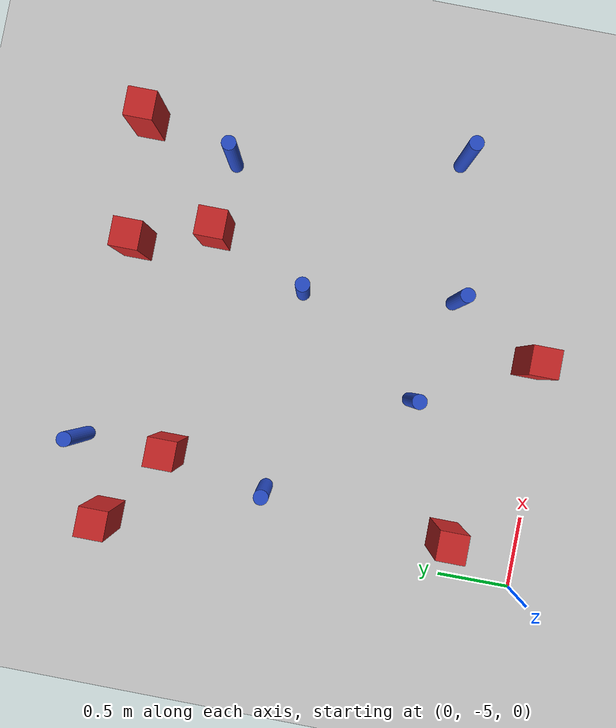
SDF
<sdf version="1.6">
 <world name="default">
  <model name="ground_plane">
   <static>1</static>
   <link name="link">
    <collision name="collision">
     <geometry><plane><normal>0 0 1</normal><size>100 100</size></plane></geometry>
     <surface><friction><ode><mu>100</mu><mu2>50</mu2></ode></friction></surface>
    </collision>
    <visual name="visual">
     <cast_shadows>0</cast_shadows>
     <geometry><plane><normal>0 0 1</normal><size>100 100</size></plane></geometry>
     <material>
      <ambient>1.0 1.0 1.0 1.0</ambient>
      <diffuse>0.8 0.8 0.8 1.0</diffuse>
      <specular>0.01 0.01 0.01 1.000000</specular>
     </material>
    </visual>
   </link>
  </model>
  <model name="pole_obstacle15">
   <static>true</static>
   <pose>2.59792775279 -2.53692966714 -3.09024884793e-07 -7.19054271912e-07 -2.11315075144e-07 -1.93935509271e-07</pose>
   <link name="link">
    <pose>0 0 0.3 0 -0 0</pose>
    <inertial>
     <mass>1</mass>
     <inertia><ixx>0.145833</ixx><ixy>0</ixy><ixz>0</ixz><iyy>0.145833</iyy><iyz>0</iyz><izz>0.125</izz></inertia>
    </inertial>
    <collision name="collision">
     <geometry><cylinder><radius>0.05</radius><length>.6</length></cylinder></geometry>
    </collision>
    <visual name="visual">
     <geometry><cylinder><radius>0.05</radius><length>.6</length></cylinder></geometry>
     <material>
      <script><name>Gazebo/Blue</name><uri>file://media/materials/scripts/gazebo.material</uri></script>
     </material>
    </visual>
   </link>
  </model>
  <model name="pole_obstacle20">
   <static>true</static>
   <pose>1.17382200154 -4.06774847225 -3.09024884793e-07 -7.19054271912e-07 -2.11315075134e-07 -1.93935509265e-07</pose>
   <link name="link">
    <pose>0 0 0.3 0 -0 0</pose>
    <inertial>
     <mass>1</mass>
     <inertia><ixx>0.145833</ixx><ixy>0</ixy><ixz>0</ixz><iyy>0.145833</iyy><iyz>0</iyz><izz>0.125</izz></inertia>
    </inertial>
    <collision name="collision">
     <geometry><cylinder><radius>0.05</radius><length>.6</length></cylinder></geometry>
    </collision>
    <visual name="visual">
     <geometry><cylinder><radius>0.05</radius><length>.6</length></cylinder></geometry>
     <material>
      <script><name>Gazebo/Blue</name><uri>file://media/materials/scripts/gazebo.material</uri></script>
     </material>
    </visual>
   </link>
  </model>
  <model name="pole_obstacle38">
   <static>true</static>
   <pose>2.89941433619 -4.12505029738 -3.09024884793e-07 -7.19054271912e-07 -2.11315075134e-07 -1.93935509266e-07</pose>
   <link name="link">
    <pose>0 0 0.3 0 -0 0</pose>
    <inertial>
     <mass>1</mass>
     <inertia><ixx>0.145833</ixx><ixy>0</ixy><ixz>0</ixz><iyy>0.145833</iyy><iyz>0</iyz><izz>0.125</izz></inertia>
    </inertial>
    <collision name="collision">
     <geometry><cylinder><radius>0.05</radius><length>.6</length></cylinder></geometry>
    </collision>
    <visual name="visual">
     <geometry><cylinder><radius>0.05</radius><length>.6</length></cylinder></geometry>
     <material>
      <script><name>Gazebo/Blue</name><uri>file://media/materials/scripts/gazebo.material</uri></script>
     </material>
    </visual>
   </link>
  </model>
  <model name="pole_obstacle68">
   <static>true</static>
   <pose>0.381886724583 -3.1783384255 -3.09024884793e-07 -7.19054271912e-07 -2.11315075129e-07 -1.93935509263e-07</pose>
   <link name="link">
    <pose>0 0 0.3 0 -0 0</pose>
    <inertial>
     <mass>1</mass>
     <inertia><ixx>0.145833</ixx><ixy>0</ixy><ixz>0</ixz><iyy>0.145833</iyy><iyz>0</iyz><izz>0.125</izz></inertia>
    </inertial>
    <collision name="collision">
     <geometry><cylinder><radius>0.05</radius><length>.6</length></cylinder></geometry>
    </collision>
    <visual name="visual">
     <geometry><cylinder><radius>0.05</radius><length>.6</length></cylinder></geometry>
     <material>
      <script><name>Gazebo/Blue</name><uri>file://media/materials/scripts/gazebo.material</uri></script>
     </material>
    </visual>
   </link>
  </model>
  <model name="square_post_obstacle63">
   <static>true</static>
   <pose>2.08169823434 -2.50607635694 -4.36207812815e-07 3.75137919937e-06 9.77721102514e-07 2.47381364184e-05</pose>
   <link name="link">
    <pose>0 0 0.25 0 -0 0</pose>
    <inertial>
     <mass>100</mass>
     <inertia>
      <ixx>0.166667</ixx>
      <ixy>0</ixy>
      <ixz>0</ixz>
      <iyy>0.166667</iyy>
      <iyz>0</iyz>
      <izz>0.166667</izz>
     </inertia>
    </inertial>
    <collision name="collision"><geometry><box><size>.2 .2 .5</size></box></geometry></collision>
    <visual name="visual">
     <geometry><box><size>.2 .2 .5</size></box></geometry>
     <material>
      <script><name>Gazebo/Red</name><uri>file://media/materials/scripts/gazebo.material</uri></script>
     </material>
    </visual>
   </link>
  </model>
  <model name="square_post_obstacle64">
   <static>true</static>
   <pose>1.58521656977 -4.85045739335 -4.36207812815e-07 3.75137919937e-06 9.77721102514e-07 2.47381364184e-05</pose>
   <link name="link">
    <pose>0 0 0.25 0 -0 0</pose>
    <inertial>
     <mass>100</mass>
     <inertia>
      <ixx>0.166667</ixx>
      <ixy>0</ixy>
      <ixz>0</ixz>
      <iyy>0.166667</iyy>
      <iyz>0</iyz>
      <izz>0.166667</izz>
     </inertia>
    </inertial>
    <collision name="collision"><geometry><box><size>.2 .2 .5</size></box></geometry></collision>
    <visual name="visual">
     <geometry><box><size>.2 .2 .5</size></box></geometry>
     <material>
      <script><name>Gazebo/Red</name><uri>file://media/materials/scripts/gazebo.material</uri></script>
     </material>
    </visual>
   </link>
  </model>
  <model name="square_post_obstacle84">
   <static>true</static>
   <pose>0.517862594368 -2.47184420044 -4.36207812815e-07 3.75137919937e-06 9.77721102514e-07 2.47381364184e-05</pose>
   <link name="link">
    <pose>0 0 0.25 0 -0 0</pose>
    <inertial>
     <mass>100</mass>
     <inertia>
      <ixx>0.166667</ixx>
      <ixy>0</ixy>
      <ixz>0</ixz>
      <iyy>0.166667</iyy>
      <iyz>0</iyz>
      <izz>0.166667</izz>
     </inertia>
    </inertial>
    <collision name="collision"><geometry><box><size>.2 .2 .5</size></box></geometry></collision>
    <visual name="visual">
     <geometry><box><size>.2 .2 .5</size></box></geometry>
     <material>
      <script><name>Gazebo/Red</name><uri>file://media/materials/scripts/gazebo.material</uri></script>
     </material>
    </visual>
   </link>
  </model>
  <model name="pole_obstacle112">
   <static>true</static>
   <pose>1.77823148418 -3.18313676283 -3.09024884793e-07 -7.19054271912e-07 -2.11315075132e-07 -1.93935509263e-07</pose>
   <link name="link">
    <pose>0 0 0.3 0 -0 0</pose>
    <inertial>
     <mass>1</mass>
     <inertia><ixx>0.145833</ixx><ixy>0</ixy><ixz>0</ixz><iyy>0.145833</iyy><iyz>0</iyz><izz>0.125</izz></inertia>
    </inertial>
    <collision name="collision">
     <geometry><cylinder><radius>0.05</radius><length>.6</length></cylinder></geometry>
    </collision>
    <visual name="visual">
     <geometry><cylinder><radius>0.05</radius><length>.6</length></cylinder></geometry>
     <material>
      <script><name>Gazebo/Blue</name><uri>file://media/materials/scripts/gazebo.material</uri></script>
     </material>
    </visual>
   </link>
  </model>
  <model name="square_post_obstacle130">
   <static>true</static>
   <pose>1.90485653981 -1.96566548851 -4.36207812815e-07 3.75137919937e-06 9.77721102514e-07 2.47381364184e-05</pose>
   <link name="link">
    <pose>0 0 0.25 0 -0 0</pose>
    <inertial>
     <mass>100</mass>
     <inertia>
      <ixx>0.166667</ixx>
      <ixy>0</ixy>
      <ixz>0</ixz>
      <iyy>0.166667</iyy>
      <iyz>0</iyz>
      <izz>0.166667</izz>
     </inertia>
    </inertial>
    <collision name="collision"><geometry><box><size>.2 .2 .5</size></box></geometry></collision>
    <visual name="visual">
     <geometry><box><size>.2 .2 .5</size></box></geometry>
     <material>
      <script><name>Gazebo/Red</name><uri>file://media/materials/scripts/gazebo.material</uri></script>
     </material>
    </visual>
   </link>
  </model>
  <model name="square_post_obstacle132">
   <static>true</static>
   <pose>0.27884176633 -4.46703697124 -4.36207812815e-07 3.75137919937e-06 9.77721102514e-07 2.47381364184e-05</pose>
   <link name="link">
    <pose>0 0 0.25 0 -0 0</pose>
    <inertial>
     <mass>100</mass>
     <inertia>
      <ixx>0.166667</ixx>
      <ixy>0</ixy>
      <ixz>0</ixz>
      <iyy>0.166667</iyy>
      <iyz>0</iyz>
      <izz>0.166667</izz>
     </inertia>
    </inertial>
    <collision name="collision"><geometry><box><size>.2 .2 .5</size></box></geometry></collision>
    <visual name="visual">
     <geometry><box><size>.2 .2 .5</size></box></geometry>
     <material>
      <script><name>Gazebo/Red</name><uri>file://media/materials/scripts/gazebo.material</uri></script>
     </material>
    </visual>
   </link>
  </model>
  <model name="pole_obstacle140">
   <static>true</static>
   <pose>0.509441877578 -1.86415955122 -3.09024884793e-07 -7.19054271912e-07 -2.11315075142e-07 -1.93935509268e-07</pose>
   <link name="link">
    <pose>0 0 0.3 0 -0 0</pose>
    <inertial>
     <mass>1</mass>
     <inertia><ixx>0.145833</ixx><ixy>0</ixy><ixz>0</ixz><iyy>0.145833</iyy><iyz>0</iyz><izz>0.125</izz></inertia>
    </inertial>
    <collision name="collision">
     <geometry><cylinder><radius>0.05</radius><length>.6</length></cylinder></geometry>
    </collision>
    <visual name="visual">
     <geometry><cylinder><radius>0.05</radius><length>.6</length></cylinder></geometry>
     <material>
      <script><name>Gazebo/Blue</name><uri>file://media/materials/scripts/gazebo.material</uri></script>
     </material>
    </visual>
   </link>
  </model>
  <model name="square_post_obstacle174">
   <static>true</static>
   <pose>-0.0113629270649 -2.11790334278 -4.36207812815e-07 3.75137919937e-06 9.77721102514e-07 2.47381364184e-05</pose>
   <link name="link">
    <pose>0 0 0.25 0 -0 0</pose>
    <inertial>
     <mass>100</mass>
     <inertia>
      <ixx>0.166667</ixx>
      <ixy>0</ixy>
      <ixz>0</ixz>
      <iyy>0.166667</iyy>
      <iyz>0</iyz>
      <izz>0.166667</izz>
     </inertia>
    </inertial>
    <collision name="collision"><geometry><box><size>.2 .2 .5</size></box></geometry></collision>
    <visual name="visual">
     <geometry><box><size>.2 .2 .5</size></box></geometry>
     <material>
      <script><name>Gazebo/Red</name><uri>file://media/materials/scripts/gazebo.material</uri></script>
     </material>
    </visual>
   </link>
  </model>
  <model name="square_post_obstacle194">
   <static>true</static>
   <pose>2.7759424216 -1.89139644886 -4.36207812815e-07 3.75137919937e-06 9.77721102514e-07 2.47381364184e-05</pose>
   <link name="link">
    <pose>0 0 0.25 0 -0 0</pose>
    <inertial>
     <mass>100</mass>
     <inertia>
      <ixx>0.166667</ixx>
      <ixy>0</ixy>
      <ixz>0</ixz>
      <iyy>0.166667</iyy>
      <iyz>0</iyz>
      <izz>0.166667</izz>
     </inertia>
    </inertial>
    <collision name="collision"><geometry><box><size>.2 .2 .5</size></box></geometry></collision>
    <visual name="visual">
     <geometry><box><size>.2 .2 .5</size></box></geometry>
     <material>
      <script><name>Gazebo/Red</name><uri>file://media/materials/scripts/gazebo.material</uri></script>
     </material>
    </visual>
   </link>
  </model>
  <model name="pole_obstacle207">
   <static>true</static>
   <pose>1.90978719906 -4.2489468057 -3.09024884793e-07 -7.19054271912e-07 -2.11315075134e-07 -1.93935509265e-07</pose>
   <link name="link">
    <pose>0 0 0.3 0 -0 0</pose>
    <inertial>
     <mass>1</mass>
     <inertia><ixx>0.145833</ixx><ixy>0</ixy><ixz>0</ixz><iyy>0.145833</iyy><iyz>0</iyz><izz>0.125</izz></inertia>
    </inertial>
    <collision name="collision">
     <geometry><cylinder><radius>0.05</radius><length>.6</length></cylinder></geometry>
    </collision>
    <visual name="visual">
     <geometry><cylinder><radius>0.05</radius><length>.6</length></cylinder></geometry>
     <material>
      <script><name>Gazebo/Blue</name><uri>file://media/materials/scripts/gazebo.material</uri></script>
     </material>
    </visual>
   </link>
  </model>
 </world>
</sdf>
